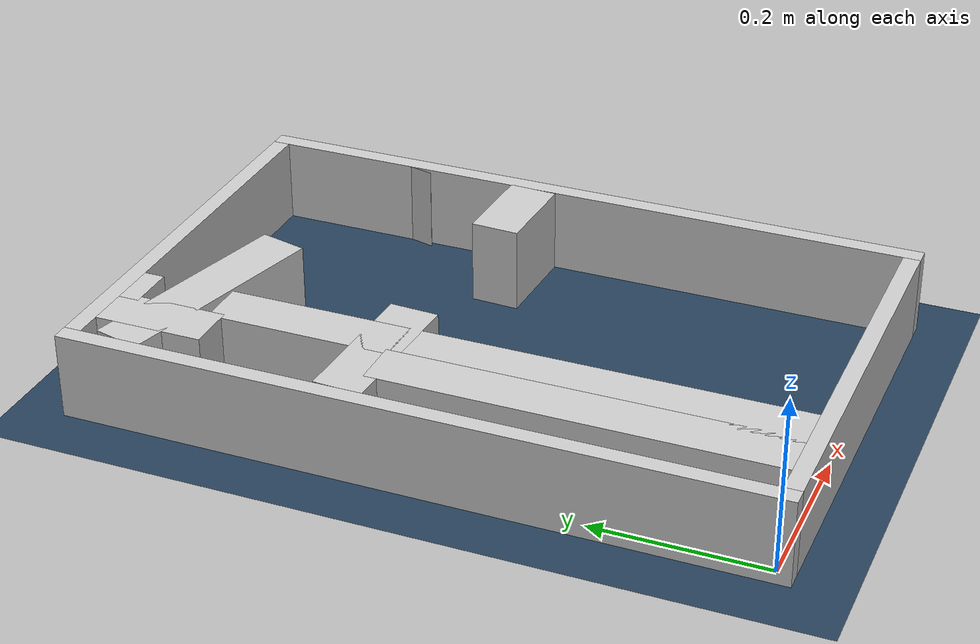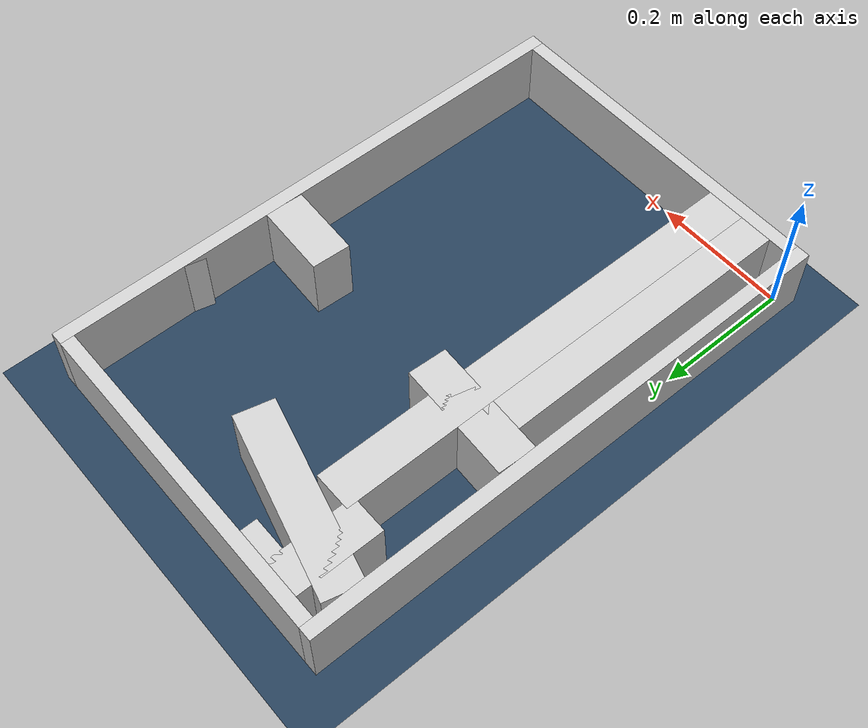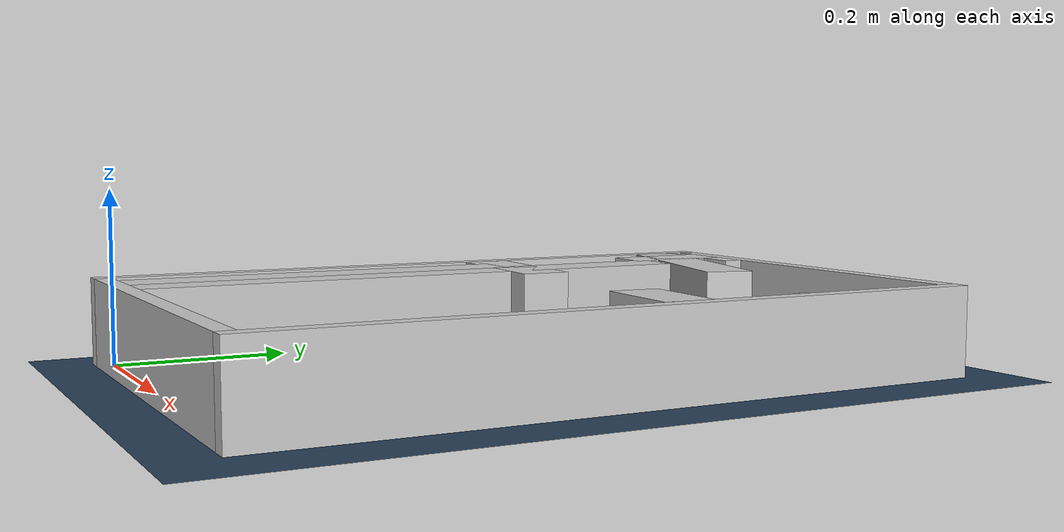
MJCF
<?xml version="1.0" ?>
<mujoco model="generated_real_template">
  <compiler angle="degree"/>
  <option timestep="0.002" integrator="implicitfast" iterations="100" cone="elliptic"/>
  <default>
    <geom density="1"/>
  </default>
  <asset>
    <texture builtin="gradient" height="3072" rgb1="0.3 0.5 0.7" rgb2="0 0 0" type="skybox" width="512"/>
    <texture builtin="checker" height="300" mark="edge" markrgb="0.8 0.8 0.8" name="groundplane" rgb1="0.2 0.3 0.4" rgb2="0.1 0.2 0.3" type="2d" width="300"/>
    <material name="groundplane" reflectance="0.2" texrepeat="5 5" texture="groundplane" texuniform="true"/>
  </asset>
  <worldbody>
    <light dir="0 0 -1" directional="true" pos="0 0 1.5"/>
    <geom name="floor" type="plane" condim="4" friction="0.5 0.005 0.001" material="groundplane" size="0 0 0.05"/>
    <body name="walls">
      <geom name="wall_boundary_left" type="box" condim="4" friction="1.0 0.005 0.0001" rgba="0.8 0.8 0.8 1" pos="-0.010000 0.387500 0.050000" euler="0 0 0.000000" size="0.010000 0.407500 0.050000"/>
      <geom name="wall_boundary_right" type="box" condim="4" friction="1.0 0.005 0.0001" rgba="0.8 0.8 0.8 1" pos="0.500000 0.387500 0.050000" euler="0 0 0.000000" size="0.010000 0.407500 0.050000"/>
      <geom name="wall_boundary_bottom" type="box" condim="4" friction="1.0 0.005 0.0001" rgba="0.8 0.8 0.8 1" pos="0.245000 -0.010000 0.050000" euler="0 0 0.000000" size="0.245000 0.010000 0.050000"/>
      <geom name="wall_boundary_top" type="box" condim="4" friction="1.0 0.005 0.0001" rgba="0.8 0.8 0.8 1" pos="0.245000 0.785000 0.050000" euler="0 0 0.000000" size="0.245000 0.010000 0.050000"/>
      <geom name="wall_inner_1_1" type="box" condim="4" friction="1.0 0.005 0.0001" rgba="0.8 0.8 0.8 1" pos="0.059357 0.228522 0.050000" euler="0 0 90.000000" size="0.228522 0.028500 0.050000"/>
      <geom name="wall_inner_1_2" type="box" condim="4" friction="1.0 0.005 0.0001" rgba="0.8 0.8 0.8 1" pos="0.059357 0.712023 0.050000" euler="0 0 90.000000" size="0.062977 0.028500 0.050000"/>
      <geom name="wall_inner_2_1" type="box" condim="4" friction="1.0 0.005 0.0001" rgba="0.8 0.8 0.8 1" pos="0.108359 0.332465 0.050000" euler="0 0 90.000000" size="0.332465 0.028500 0.050000"/>
      <geom name="wall_inner_2_2" type="box" condim="4" friction="1.0 0.005 0.0001" rgba="0.8 0.8 0.8 1" pos="0.108359 0.763136 0.050000" euler="0 0 90.000000" size="0.011864 0.028500 0.050000"/>
      <geom name="wall_inner_3_1" type="box" condim="4" friction="1.0 0.005 0.0001" rgba="0.8 0.8 0.8 1" pos="0.489830 0.607579 0.050000" euler="0 0 165.759501" size="0.000175 0.028500 0.050000"/>
      <geom name="wall_inner_3_2" type="box" condim="4" friction="1.0 0.005 0.0001" rgba="0.8 0.8 0.8 1" pos="0.130386 0.698803 0.050000" euler="0 0 165.759501" size="0.134520 0.028500 0.050000"/>
      <geom name="wall_inner_4_1" type="box" condim="4" friction="1.0 0.005 0.0001" rgba="0.8 0.8 0.8 1" pos="0.087955 0.467865 0.050000" euler="0 0 -2.733556" size="0.088055 0.028500 0.050000"/>
      <geom name="wall_inner_4_2" type="box" condim="4" friction="1.0 0.005 0.0001" rgba="0.8 0.8 0.8 1" pos="0.435103 0.451290 0.050000" euler="0 0 -2.733556" size="0.054959 0.028500 0.050000"/>
    </body>
  </worldbody>
</mujoco>
